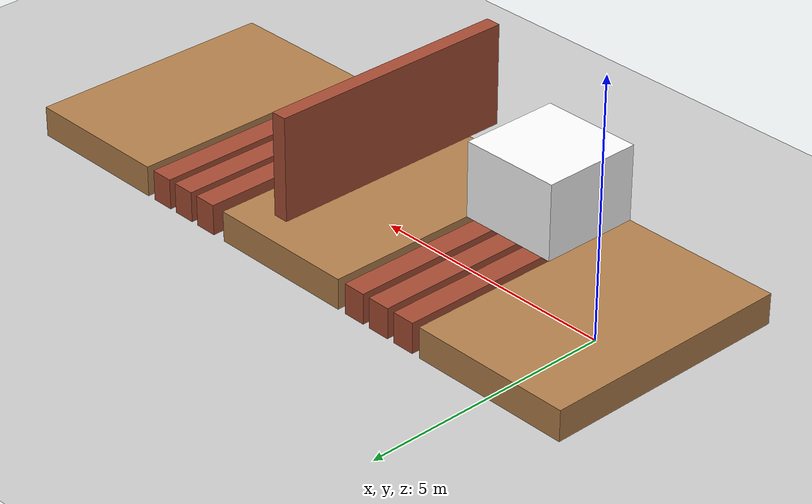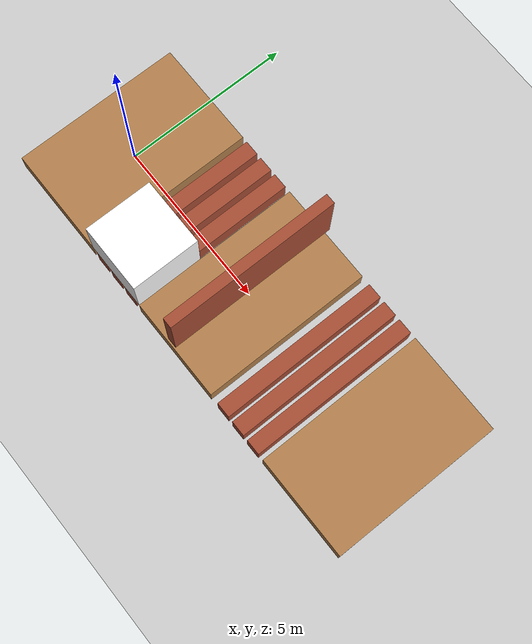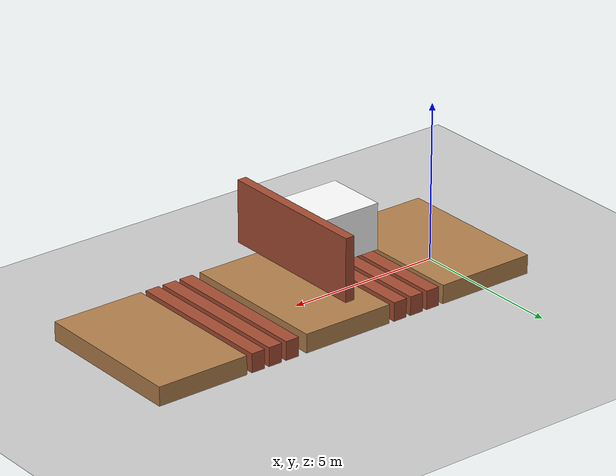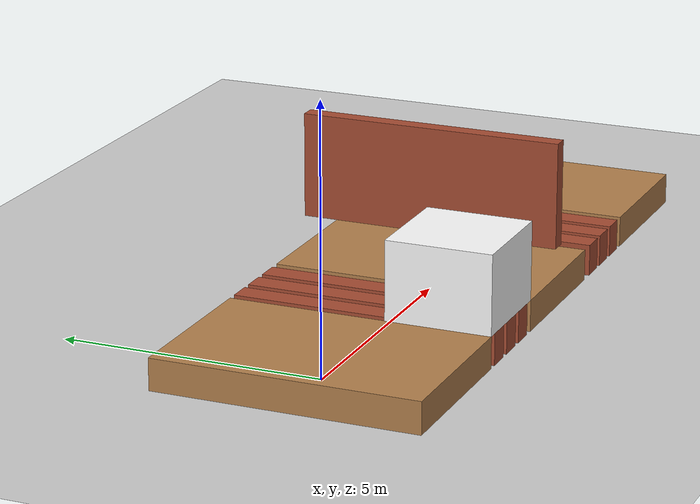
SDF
<?xml version="1.0"?>
<sdf version="1.5">
  <world name="default">

    <physics type="ode">
      <max_step_size>0.001</max_step_size>
      <real_time_factor>1</real_time_factor>
      <real_time_update_rate>600</real_time_update_rate>
      <gravity>0 0 -9.81</gravity>
      <ode>
        <solver>
          <type>quick</type>
          <iters>50</iters>
          <sor>1.3</sor>
        </solver>
        <constraints>
          <cfm>0.0</cfm>
          <erp>0.2</erp>
          <contact_max_correcting_vel>10.0</contact_max_correcting_vel>
          <contact_surface_layer>0.001</contact_surface_layer>
        </constraints>
      </ode>
    </physics>

    <scene>
      <sky>
        <clouds>
          <speed>12</speed>
        </clouds>
      </sky>
    </scene>
    <!-- A global light source -->
    <include>
      <uri>model://sun</uri>
    </include>
    <!-- A ground plane -->
    <include>
      <uri>model://ground_plane</uri>
    </include>
    <!-- environment blocks, obstacles or stairs -->
    <model name='stepping stone right'>
      <pose frame=''>0 0.0 0.0 0 -0 0</pose>

      <link name="floor3">
        <pose>0.0 0 0.3 0 0 0</pose>
        <collision name="floor3_collision">
          <geometry>
            <box>
              <size>3.225 5 0.6</size>
            </box>
          </geometry>
        </collision>
        <visual name="floor3_visual">
          <geometry>
            <box>
              <size>3.225 5 0.6</size>
            </box>
          </geometry>
          <material>
            <script>
              <uri>file://media/materials/scripts/gazebo.material</uri>
              <name>Gazebo/Wood</name>
            </script>
            <ambient>1 1 1 1</ambient>
          </material>
        </visual>
      </link>

      <link name='stones'>
        <pose frame=''>2 .0 0 0 -0 0</pose>

        <visual name='stone_1_Visual_0'>
          <pose frame=''>0.0 -0 0.3 0 -0 1.5708</pose>
          <geometry>
            <box>
              <size>5 0.45 0.6</size>
            </box>
          </geometry>
          <material>
            <script>
              <uri>file://media/materials/scripts/gazebo.material</uri>
              <name>Gazebo/Bricks</name>
            </script>
            <ambient>1 1 1 1</ambient>
          </material>
          <meta>
            <layer>0</layer>
          </meta>
        </visual>
        <collision name='stone_1_Collision_0'>
          <pose frame=''>0.0 -0 0.3 0 -0 1.5708</pose>
          <geometry>
            <box>
              <size>5 0.45 0.6</size>
            </box>
          </geometry>
        </collision>

        <visual name='stone_1_Visual_1'>
          <pose frame=''>0.6 -0 0.3 0 -0 1.5708</pose>
          <geometry>
            <box>
              <size>5 0.45 0.6</size>
            </box>
          </geometry>
          <material>
            <script>
              <uri>file://media/materials/scripts/gazebo.material</uri>
              <name>Gazebo/Bricks</name>
            </script>
            <ambient>1 1 1 1</ambient>
          </material>
          <meta>
            <layer>0</layer>
          </meta>
        </visual>
        <collision name='stone_1_Collision_1'>
          <pose frame=''>0.6 -0 0.3 0 -0 1.5708</pose>
          <geometry>
            <box>
              <size>5 0.45 0.6</size>
            </box>
          </geometry>
        </collision>

        <visual name='stone_1_Visual_2'>
          <pose frame=''>1.2 0 0.3 0 -0 1.5708</pose>
          <geometry>
            <box>
              <size>5 0.45 0.6</size>
            </box>
          </geometry>
          <material>
            <script>
              <uri>file://media/materials/scripts/gazebo.material</uri>
              <name>Gazebo/Bricks</name>
            </script>
            <ambient>1 1 1 1</ambient>
          </material>
          <meta>
            <layer>0</layer>
          </meta>
        </visual>
        <collision name='stone_1_Collision_2'>
          <pose frame=''>1.2 0 0.3 0 -0 1.5708</pose>
          <geometry>
            <box>
              <size>5 0.45 0.6</size>
            </box>
          </geometry>
        </collision>

      </link>

      <link name="floor4">
        <pose>5.1 0 0.3 0 0 0</pose>
        <collision name="floor3_collision">
          <geometry>
            <box>
              <size>3 5 0.6</size>
            </box>
          </geometry>
        </collision>
        <visual name="floor3_visual">
          <geometry>
            <box>
              <size>3 5 0.6</size>
            </box>
          </geometry>
          <material>
            <script>
              <uri>file://media/materials/scripts/gazebo.material</uri>
              <name>Gazebo/Wood</name>
            </script>
            <ambient>1 1 1 1</ambient>
          </material>
        </visual>
      </link>

      <link name='stones2'>
        <pose frame=''>7.1 .0 0 0 -0 0</pose>

        <visual name='stone_1_Visual_0'>
          <pose frame=''>0.0 -0 0.3 0 -0 1.5708</pose>
          <geometry>
            <box>
              <size>5 0.45 0.6</size>
            </box>
          </geometry>
          <material>
            <script>
              <uri>file://media/materials/scripts/gazebo.material</uri>
              <name>Gazebo/Bricks</name>
            </script>
            <ambient>1 1 1 1</ambient>
          </material>
          <meta>
            <layer>0</layer>
          </meta>
        </visual>
        <collision name='stone_1_Collision_0'>
          <pose frame=''>0.0 -0 0.3 0 -0 1.5708</pose>
          <geometry>
            <box>
              <size>5 0.45 0.6</size>
            </box>
          </geometry>
        </collision>

        <visual name='stone_1_Visual_1'>
          <pose frame=''>0.6 -0 0.3 0 -0 1.5708</pose>
          <geometry>
            <box>
              <size>5 0.45 0.6</size>
            </box>
          </geometry>
          <material>
            <script>
              <uri>file://media/materials/scripts/gazebo.material</uri>
              <name>Gazebo/Bricks</name>
            </script>
            <ambient>1 1 1 1</ambient>
          </material>
          <meta>
            <layer>0</layer>
          </meta>
        </visual>
        <collision name='stone_1_Collision_1'>
          <pose frame=''>0.6 -0 0.3 0 -0 1.5708</pose>
          <geometry>
            <box>
              <size>5 0.45 0.6</size>
            </box>
          </geometry>
        </collision>

        <visual name='stone_1_Visual_2'>
          <pose frame=''>1.2 0 0.3 0 -0 1.5708</pose>
          <geometry>
            <box>
              <size>5 0.45 0.6</size>
            </box>
          </geometry>
          <material>
            <script>
              <uri>file://media/materials/scripts/gazebo.material</uri>
              <name>Gazebo/Bricks</name>
            </script>
            <ambient>1 1 1 1</ambient>
          </material>
          <meta>
            <layer>0</layer>
          </meta>
        </visual>
        <collision name='stone_1_Collision_2'>
          <pose frame=''>1.2 0 0.3 0 -0 1.5708</pose>
          <geometry>
            <box>
              <size>5 0.45 0.6</size>
            </box>
          </geometry>
        </collision>

      </link>

      <link name="floor5">
        <pose>10.2 0 0.3 0 0 0</pose>
        <collision name="floor5_collision">
          <geometry>
            <box>
              <size>3 5 0.6</size>
            </box>
          </geometry>
        </collision>
        <visual name="floor5_visual">
          <geometry>
            <box>
              <size>3 5 0.6</size>
            </box>
          </geometry>
          <material>
            <script>
              <uri>file://media/materials/scripts/gazebo.material</uri>
              <name>Gazebo/Wood</name>
            </script>
            <ambient>1 1 1 1</ambient>
          </material>
        </visual>
      </link>

      <link name="obstacle1">
        <pose>2.6 -1.5 1.35 0 0 0</pose>
        <collision name="obstacle2_collision">
          <geometry>
            <box>
              <size>2 2 1.5</size>
            </box>
          </geometry>
        </collision>
        <visual name="obstacle2_visual">
          <geometry>
            <box>
              <size>2 2 1.5</size>
            </box>
          </geometry>
          <material>
            <script>
              <uri>file://media/materials/scripts/gazebo.material</uri>
              <name>Gazebo/Metal</name>
            </script>
            <ambient>1 1 1 1</ambient>
          </material>
        </visual>
      </link>

      <link name="obstacle2">
        <pose>5.05 0 2.15 0 0 0</pose>
        <collision name="obstacle2_collision">
          <geometry>
            <box>
              <size>0.3 5 2</size>
            </box>
          </geometry>
        </collision>
        <visual name="obstacle2_visual">
          <geometry>
            <box>
              <size>0.3 5 2</size>
            </box>
          </geometry>
          <material>
            <script>
              <uri>file://media/materials/scripts/gazebo.material</uri>
              <name>Gazebo/Bricks</name>
            </script>
            <ambient>1 1 1 1</ambient>
          </material>
        </visual>
      </link>

      <static>1</static>
    </model>
  </world>
</sdf>
